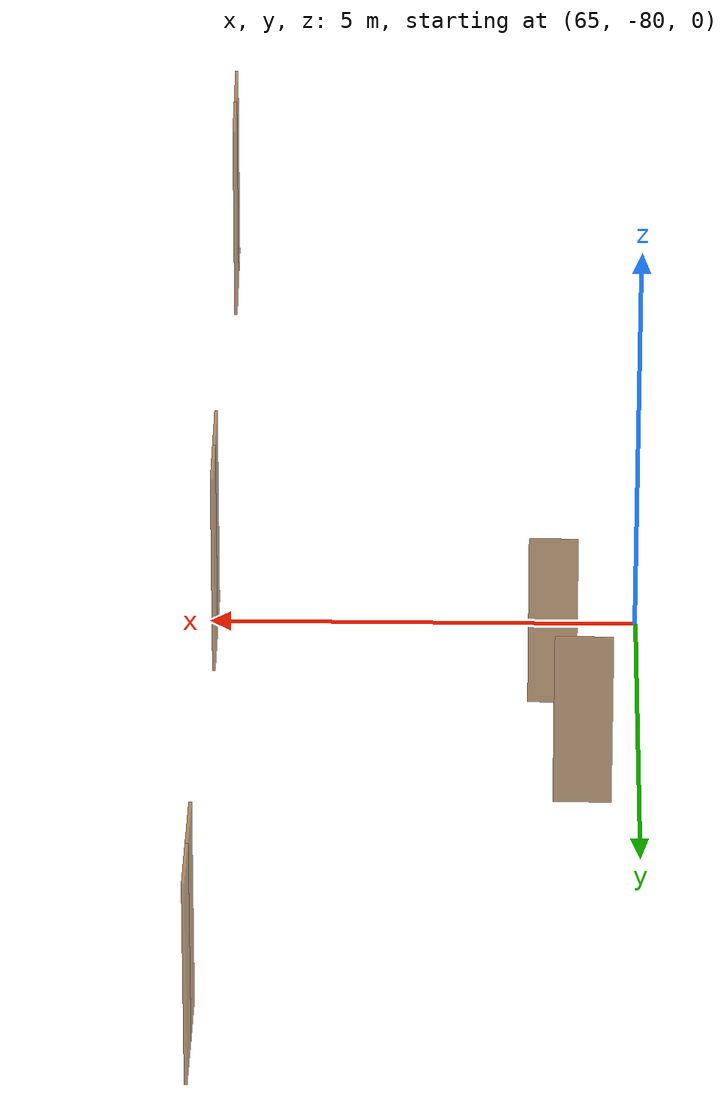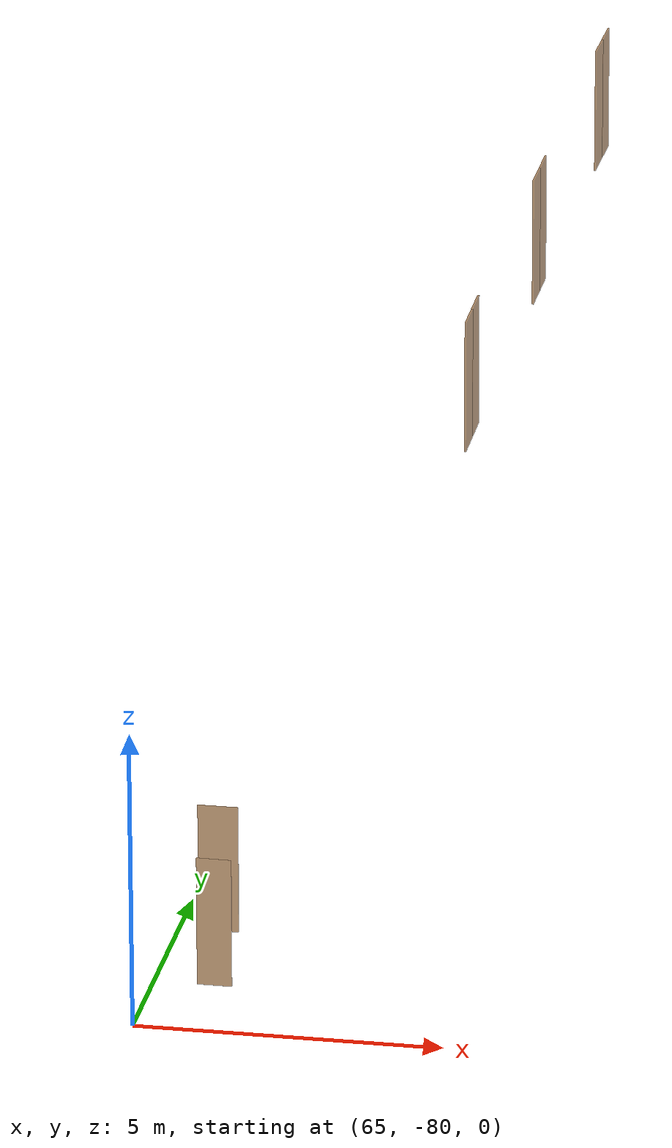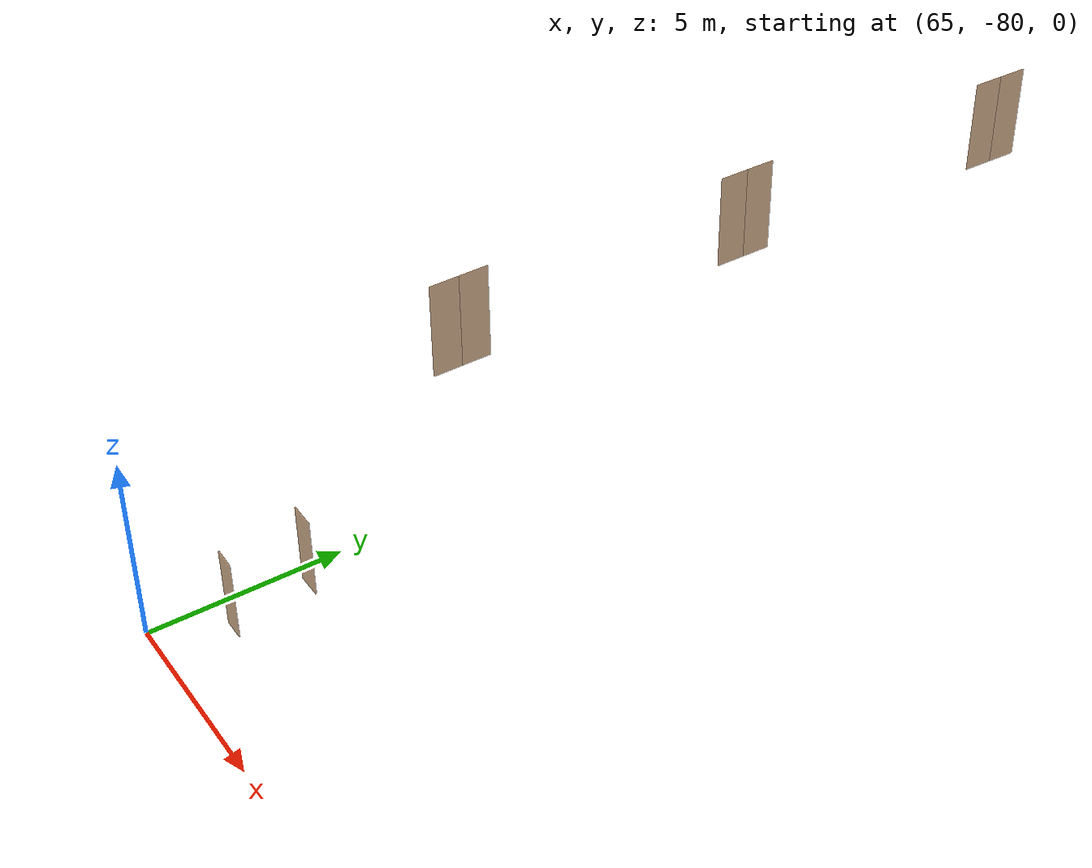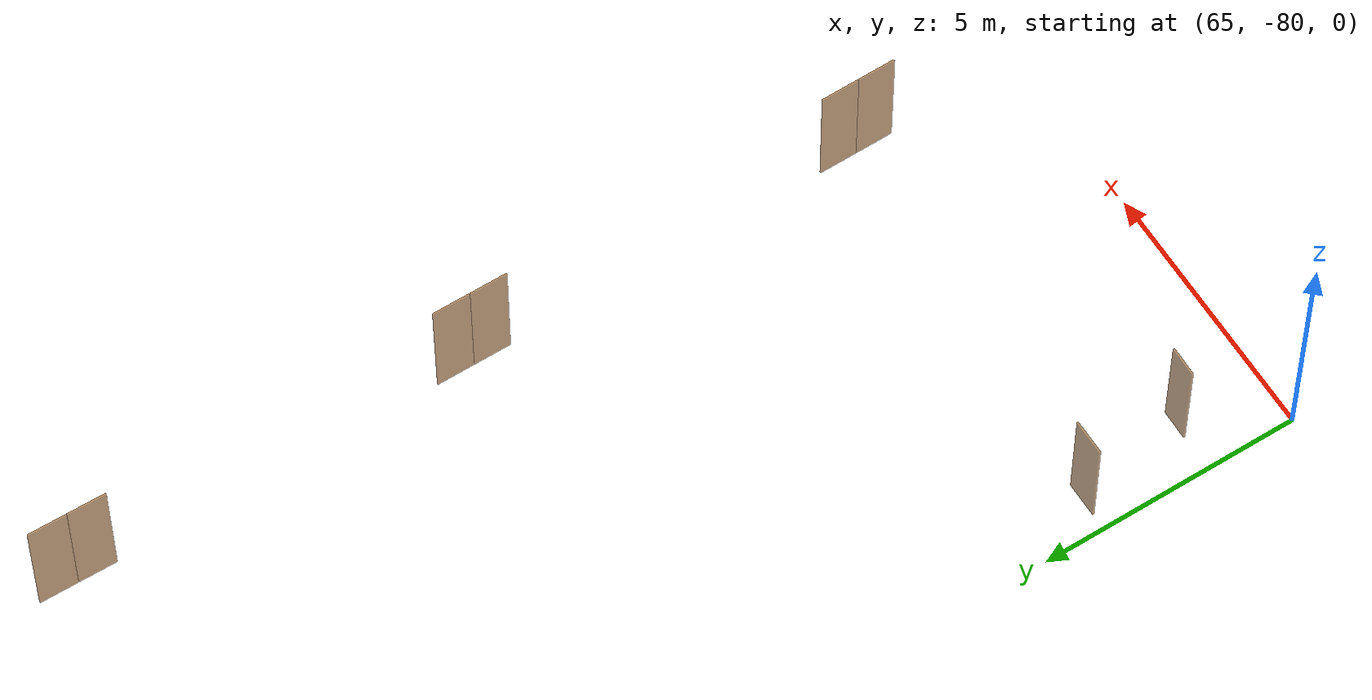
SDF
<sdf version="1.7">
 <world name="sim_world">
  <model name="cancan3">
   <pose>65.9874141096206 -78.28000876506593 0.0 0 0 3.1268591754535766</pose>
   <link name="right">
    <pose>0 0 1.11 0 0 0</pose>
    <visual name="right_visual">
     <geometry><box><size>0.5658636979061031 0.03 2.2</size></box></geometry>
     <material>
      <ambient>0.5 0.25 0 0.6</ambient>
      <diffuse>0.5 0.25 0 0.6</diffuse>
      <pbr><metal><metalness>0.0</metalness></metal></pbr>
     </material>
    </visual>
    <collision name="right_collision">
     <geometry><box><size>0.5658636979061031 0.03 2.2</size></box></geometry>
     <surface><contact><collide_bitmask>0x02</collide_bitmask></contact></surface>
    </collision>
    <inertial>
     <mass>50.0</mass>
     <inertia><ixx>20.17041666666667</ixx><iyy>21.500840519199876</iyy><izz>1.3379238525332064</izz></inertia>
    </inertial>
   </link>
   <joint name="right_joint" type="revolute">
    <parent>world</parent>
    <child>right</child>
    <axis><xyz>0 0 -1</xyz><limit><lower>0</lower><upper>1.57</upper></limit></axis>
    <pose>0.2879318489530516 0 0 0 0 0</pose>
   </joint>
   <plugin name="register_component" filename="libregister_component.so">
    <component name="Door">
     <v_max_door>0.5</v_max_door>
     <a_max_door>0.3</a_max_door>
     <a_nom_door>0.15</a_nom_door>
     <dx_min_door>0.01</dx_min_door>
     <f_max_door>500.0</f_max_door>
     <ros_interface>true</ros_interface>
     <door name="cancan3" type="SwingDoor" left_joint_name="empty_joint" right_joint_name="right_joint"/>
    </component>
   </plugin>
  </model>
  <model name="cancan2">
   <pose>65.64942774056314 -76.17066049148946 0.0 0 0 0.0</pose>
   <link name="right">
    <pose>0 0 1.11 0 0 0</pose>
    <visual name="right_visual">
     <geometry><box><size>0.6658829585567838 0.03 2.2</size></box></geometry>
     <material>
      <ambient>0.5 0.25 0 0.6</ambient>
      <diffuse>0.5 0.25 0 0.6</diffuse>
      <pbr><metal><metalness>0.0</metalness></metal></pbr>
     </material>
    </visual>
    <collision name="right_collision">
     <geometry><box><size>0.6658829585567838 0.03 2.2</size></box></geometry>
     <surface><contact><collide_bitmask>0x02</collide_bitmask></contact></surface>
    </collision>
    <inertial>
     <mass>50.0</mass>
     <inertia><ixx>20.17041666666667</ixx><iyy>22.014167143734735</iyy><izz>1.8512504770680647</izz></inertia>
    </inertial>
   </link>
   <joint name="right_joint" type="revolute">
    <parent>world</parent>
    <child>right</child>
    <axis><xyz>0 0 1</xyz><limit><lower>0</lower><upper>1.57</upper></limit></axis>
    <pose>0.3379414792783919 0 0 0 0 0</pose>
   </joint>
   <plugin name="register_component" filename="libregister_component.so">
    <component name="Door">
     <v_max_door>0.5</v_max_door>
     <a_max_door>0.3</a_max_door>
     <a_nom_door>0.15</a_nom_door>
     <dx_min_door>0.01</dx_min_door>
     <f_max_door>500.0</f_max_door>
     <ros_interface>true</ros_interface>
     <door name="cancan2" type="SwingDoor" left_joint_name="empty_joint" right_joint_name="right_joint"/>
    </component>
   </plugin>
  </model>
  <model name="TD0108AI">
   <pose>69.4391617826742 -59.79881454888431 8.0 0 0 -1.585838878532824</pose>
   <link name="right">
    <pose>0.338806890408198 0 1.11 0 0 0</pose>
    <visual name="right_visual">
     <geometry><box><size>0.667613780816396 0.03 2.2</size></box></geometry>
     <material>
      <ambient>0.5 0.25 0 0.6</ambient>
      <diffuse>0.5 0.25 0 0.6</diffuse>
      <pbr><metal><metalness>0.0</metalness></metal></pbr>
     </material>
    </visual>
    <collision name="right_collision">
     <geometry><box><size>0.667613780816396 0.03 2.2</size></box></geometry>
     <surface><contact><collide_bitmask>0x02</collide_bitmask></contact></surface>
    </collision>
    <inertial>
     <mass>50.0</mass>
     <inertia><ixx>20.17041666666667</ixx><iyy>22.02378400139985</iyy><izz>1.8608673347331786</izz></inertia>
    </inertial>
   </link>
   <joint name="right_joint" type="revolute">
    <parent>world</parent>
    <child>right</child>
    <axis><xyz>0 0 -1</xyz><limit><lower>0</lower><upper>1.57</upper></limit></axis>
    <pose>0.338806890408198 0 0 0 0 0</pose>
   </joint>
   <link name="left">
    <pose>-0.338806890408198 0 1.11 0 0 0</pose>
    <visual name="left_visual">
     <geometry><box><size>0.667613780816396 0.03 2.2</size></box></geometry>
     <material>
      <ambient>0.5 0.25 0 0.6</ambient>
      <diffuse>0.5 0.25 0 0.6</diffuse>
      <pbr><metal><metalness>0.0</metalness></metal></pbr>
     </material>
    </visual>
    <collision name="left_collision">
     <geometry><box><size>0.667613780816396 0.03 2.2</size></box></geometry>
     <surface><contact><collide_bitmask>0x02</collide_bitmask></contact></surface>
    </collision>
    <inertial>
     <mass>50.0</mass>
     <inertia><ixx>20.17041666666667</ixx><iyy>22.02378400139985</iyy><izz>1.8608673347331786</izz></inertia>
    </inertial>
   </link>
   <joint name="left_joint" type="revolute">
    <parent>world</parent>
    <child>left</child>
    <axis><xyz>0 0 -1</xyz><limit><lower>-1.57</lower><upper>0</upper></limit></axis>
    <pose>-0.338806890408198 0 0 0 0 0</pose>
   </joint>
   <plugin name="register_component" filename="libregister_component.so">
    <component name="Door">
     <v_max_door>0.5</v_max_door>
     <a_max_door>0.3</a_max_door>
     <a_nom_door>0.15</a_nom_door>
     <dx_min_door>0.01</dx_min_door>
     <f_max_door>500.0</f_max_door>
     <ros_interface>true</ros_interface>
     <door name="TD0108AI" type="DoubleSwingDoor" left_joint_name="left_joint" right_joint_name="right_joint"/>
    </component>
   </plugin>
  </model>
  <model name="TD0107AI">
   <pose>69.42261503695126 -66.85896645383062 8.0 0 0 -1.571123505096818</pose>
   <link name="right">
    <pose>0.33253889292192323 0 1.11 0 0 0</pose>
    <visual name="right_visual">
     <geometry><box><size>0.6550777858438465 0.03 2.2</size></box></geometry>
     <material>
      <ambient>0.5 0.25 0 0.6</ambient>
      <diffuse>0.5 0.25 0 0.6</diffuse>
      <pbr><metal><metalness>0.0</metalness></metal></pbr>
     </material>
    </visual>
    <collision name="right_collision">
     <geometry><box><size>0.6550777858438465 0.03 2.2</size></box></geometry>
     <surface><contact><collide_bitmask>0x02</collide_bitmask></contact></surface>
    </collision>
    <inertial>
     <mass>50.0</mass>
     <inertia><ixx>20.17041666666667</ixx><iyy>21.954695439608656</iyy><izz>1.791778772941985</izz></inertia>
    </inertial>
   </link>
   <joint name="right_joint" type="revolute">
    <parent>world</parent>
    <child>right</child>
    <axis><xyz>0 0 -1</xyz><limit><lower>0</lower><upper>1.57</upper></limit></axis>
    <pose>0.33253889292192323 0 0 0 0 0</pose>
   </joint>
   <link name="left">
    <pose>-0.33253889292192323 0 1.11 0 0 0</pose>
    <visual name="left_visual">
     <geometry><box><size>0.6550777858438465 0.03 2.2</size></box></geometry>
     <material>
      <ambient>0.5 0.25 0 0.6</ambient>
      <diffuse>0.5 0.25 0 0.6</diffuse>
      <pbr><metal><metalness>0.0</metalness></metal></pbr>
     </material>
    </visual>
    <collision name="left_collision">
     <geometry><box><size>0.6550777858438465 0.03 2.2</size></box></geometry>
     <surface><contact><collide_bitmask>0x02</collide_bitmask></contact></surface>
    </collision>
    <inertial>
     <mass>50.0</mass>
     <inertia><ixx>20.17041666666667</ixx><iyy>21.954695439608656</iyy><izz>1.791778772941985</izz></inertia>
    </inertial>
   </link>
   <joint name="left_joint" type="revolute">
    <parent>world</parent>
    <child>left</child>
    <axis><xyz>0 0 -1</xyz><limit><lower>-1.57</lower><upper>0</upper></limit></axis>
    <pose>-0.33253889292192323 0 0 0 0 0</pose>
   </joint>
   <plugin name="register_component" filename="libregister_component.so">
    <component name="Door">
     <v_max_door>0.5</v_max_door>
     <a_max_door>0.3</a_max_door>
     <a_nom_door>0.15</a_nom_door>
     <dx_min_door>0.01</dx_min_door>
     <f_max_door>500.0</f_max_door>
     <ros_interface>true</ros_interface>
     <door name="TD0107AI" type="DoubleSwingDoor" left_joint_name="left_joint" right_joint_name="right_joint"/>
    </component>
   </plugin>
  </model>
  <model name="TD0106AI">
   <pose>69.42705745066247 -73.93064066868044 8.0 0 0 -1.5619125662999749</pose>
   <link name="right">
    <pose>0.3371586841216713 0 1.11 0 0 0</pose>
    <visual name="right_visual">
     <geometry><box><size>0.6643173682433426 0.03 2.2</size></box></geometry>
     <material>
      <ambient>0.5 0.25 0 0.6</ambient>
      <diffuse>0.5 0.25 0 0.6</diffuse>
      <pbr><metal><metalness>0.0</metalness></metal></pbr>
     </material>
    </visual>
    <collision name="right_collision">
     <geometry><box><size>0.6643173682433426 0.03 2.2</size></box></geometry>
     <surface><contact><collide_bitmask>0x02</collide_bitmask></contact></surface>
    </collision>
    <inertial>
     <mass>50.0</mass>
     <inertia><ixx>20.17041666666667</ixx><iyy>22.005489857290673</iyy><izz>1.842573190624004</izz></inertia>
    </inertial>
   </link>
   <joint name="right_joint" type="revolute">
    <parent>world</parent>
    <child>right</child>
    <axis><xyz>0 0 -1</xyz><limit><lower>0</lower><upper>1.57</upper></limit></axis>
    <pose>0.3371586841216713 0 0 0 0 0</pose>
   </joint>
   <link name="left">
    <pose>-0.3371586841216713 0 1.11 0 0 0</pose>
    <visual name="left_visual">
     <geometry><box><size>0.6643173682433426 0.03 2.2</size></box></geometry>
     <material>
      <ambient>0.5 0.25 0 0.6</ambient>
      <diffuse>0.5 0.25 0 0.6</diffuse>
      <pbr><metal><metalness>0.0</metalness></metal></pbr>
     </material>
    </visual>
    <collision name="left_collision">
     <geometry><box><size>0.6643173682433426 0.03 2.2</size></box></geometry>
     <surface><contact><collide_bitmask>0x02</collide_bitmask></contact></surface>
    </collision>
    <inertial>
     <mass>50.0</mass>
     <inertia><ixx>20.17041666666667</ixx><iyy>22.005489857290673</iyy><izz>1.842573190624004</izz></inertia>
    </inertial>
   </link>
   <joint name="left_joint" type="revolute">
    <parent>world</parent>
    <child>left</child>
    <axis><xyz>0 0 -1</xyz><limit><lower>-1.57</lower><upper>0</upper></limit></axis>
    <pose>-0.3371586841216713 0 0 0 0 0</pose>
   </joint>
   <plugin name="register_component" filename="libregister_component.so">
    <component name="Door">
     <v_max_door>0.5</v_max_door>
     <a_max_door>0.3</a_max_door>
     <a_nom_door>0.15</a_nom_door>
     <dx_min_door>0.01</dx_min_door>
     <f_max_door>500.0</f_max_door>
     <ros_interface>true</ros_interface>
     <door name="TD0106AI" type="DoubleSwingDoor" left_joint_name="left_joint" right_joint_name="right_joint"/>
    </component>
   </plugin>
  </model>
 </world>
</sdf>
